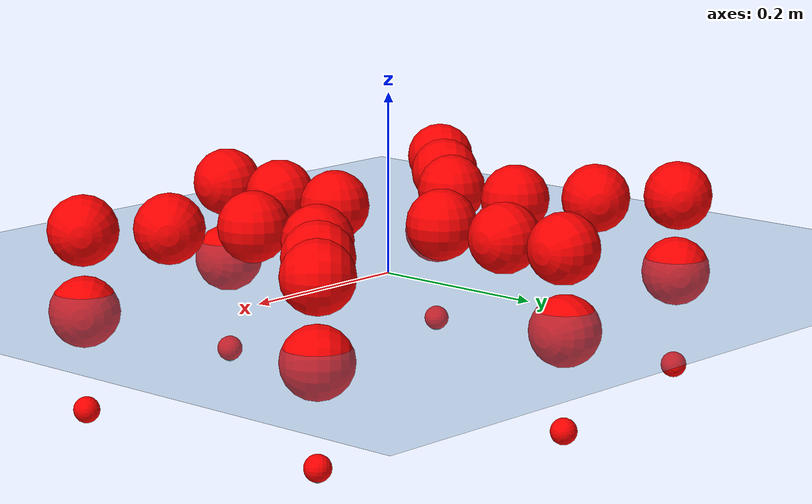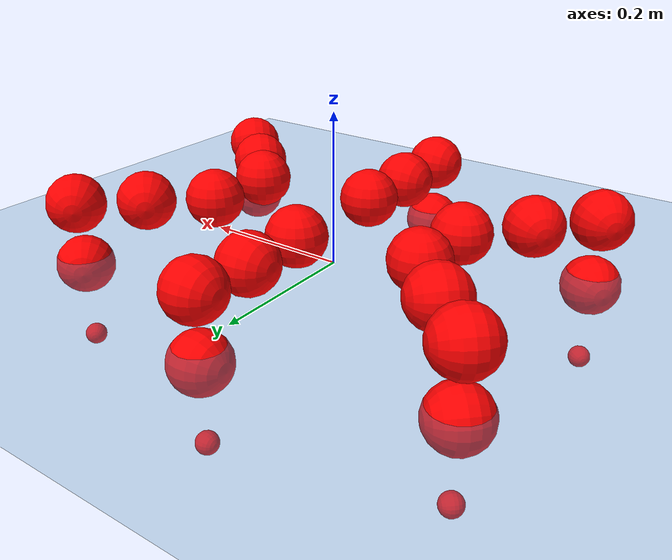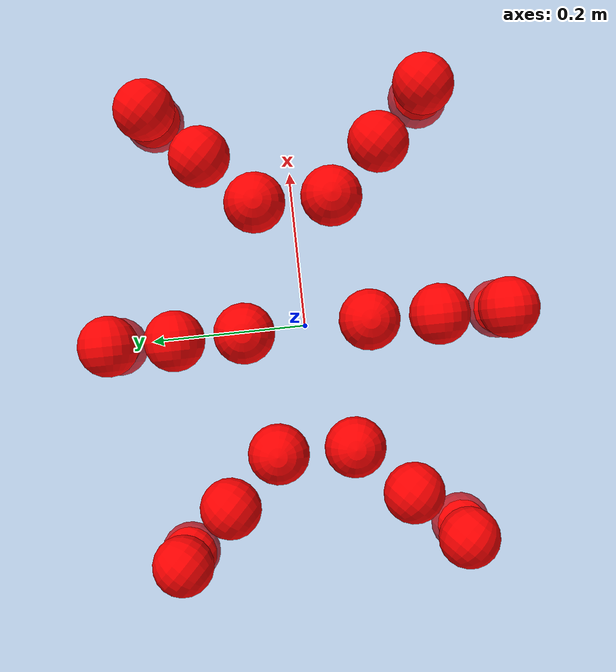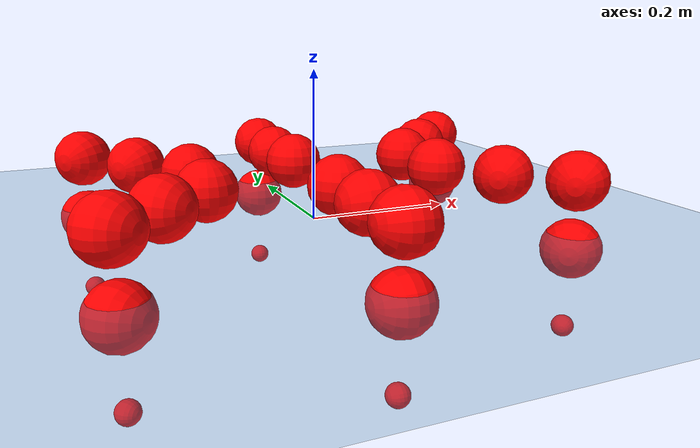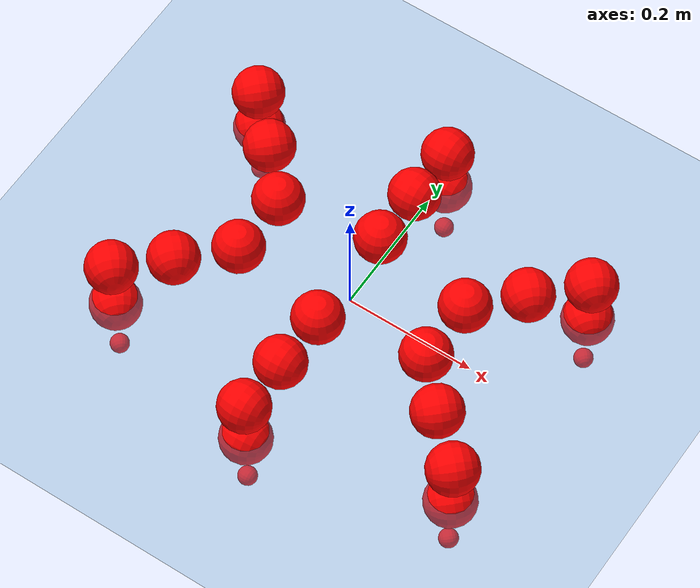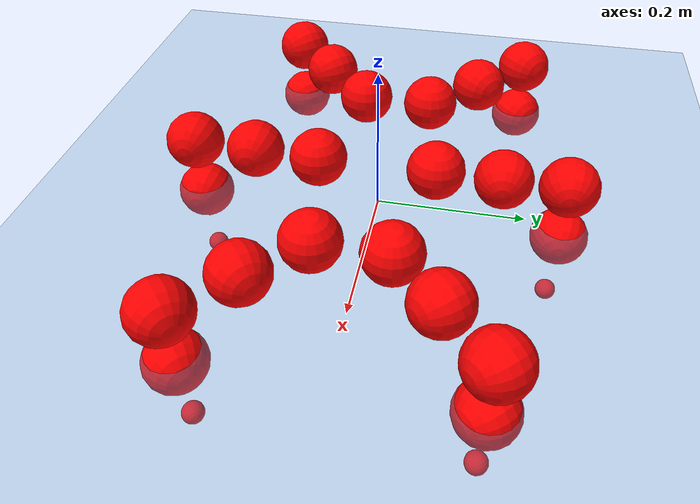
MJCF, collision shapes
<mujoco model="Golem">
  <compiler angle="radian" assetdir="assets" balanceinertia="true" inertiafromgeom="false"/>

  <option timestep="0.005" density="1.2" viscosity="2e-05"/>

  <size nkey="1"/>

  <visual>
    <quality shadowsize="8192"/>
    <map shadowclip="0.5"/>
  </visual>

  <default>
    <default class="/">
      <joint armature="0.01" damping="0.01" frictionloss="0.01"/>
      <geom contype="0" conaffinity="0" group="1" solref="-1000 -80"/>
      <site size="0.01 0.005 0.005" group="5"/>
      <general forcelimited="true" biastype="affine" gainprm="25" biasprm="0 -25 -0.5"/>
      <default class="visual">
        <geom type="mesh" group="2"/>
      </default>
      <default class="collision">
        <geom group="3"/>
      </default>
      <default class="foot">
        <geom size="0.01 0 0" condim="6" group="4" priority="1" solimp="0.015 1 0.01"/>
      </default>
      <default class="reward_collision_sphere">
        <geom group="5" rgba="1 0 0 1"/>
      </default>
    </default>
  </default>

  <asset>
    <texture type="skybox" colorspace="auto" name="//unnamed_texture_0" builtin="gradient" rgb1="0.95 0.95 0.95" rgb2="0.95 0.95 0.95" width="100" height="600"/>
    <texture type="2d" colorspace="auto" name="texplane" builtin="checker" rgb1="0.345 0.575 0.748" rgb2="0.345 0.575 0.748" markrgb="1 1 1" width="512" height="512"/>
    <material name="MatPlane" class="/" texture="texplane" texuniform="true" texrepeat="2 2" specular="0.9"/>
    <mesh name="body" class="/" file="body.stl" scale="0.001 0.001 0.001"/>
    <mesh name="coxa" class="/" file="coxa.stl" scale="0.001 0.001 0.001"/>
    <mesh name="femur" class="/" file="femur.stl" scale="0.001 0.001 0.001"/>
    <mesh name="tibia" class="/" file="tibia.stl" scale="0.001 0.001 0.001"/>
    <mesh name="tarsus" class="/" file="tarsus.stl" scale="0.001 0.001 0.001"/>
  </asset>

  <worldbody>
    <geom name="floor" class="/" size="100 100 0.125" type="plane" group="0" material="MatPlane"/>
    <light name="toplight_shadow" class="/" pos="0 0 5" dir="0.0990148 0.0990148 -0.990148" type="directional" ambient="0.04 0.04 0.04" diffuse="0.55 0.55 0.55" specular="0.12 0.12 0.12"/>
    <light name="toplight_fill" class="/" pos="0 0 5" dir="0.0990148 0.0990148 -0.990148" type="directional" castshadow="false" ambient="0.04 0.04 0.04" diffuse="0.3 0.3 0.3" specular="0.08 0.08 0.08"/>
    <body name="trunk" pos="0.00014196 0.000118288 -0.00103998" quat="1 -0.000509656 9.87049e-05 -0.000102955">
      <inertial pos="0.0028361 0.000852681 -0.00424647" quat="0.999903 -0.00157057 0.0126372 -0.00565494" mass="3.36374" diaginertia="0.0108476 0.00368556 0.0147889"/>
      <joint name="//unnamed_joint_0" type="free"/>
      <geom name="//unnamed_geom_1" class="/" pos="0 0 0.0686636" quat="1 0 0 0" type="mesh" rgba="0.9 0.9 0.9 1" mesh="body"/>
      <site name="imu" class="/" pos="0.126591 -0.00126264 0.100359" size="0.00967833"/>
      <camera name="track" class="/" pos="0 -1.63797 0" quat="0.707107 0.707107 0 0" mode="trackcom"/>
      <camera name="ego_camera" class="/" pos="0.131514 0 0.107287" quat="-0.5 -0.5 0.5 0.5"/>
      <body name="coxa_RR" pos="-0.178585 -0.0682466 0.0663827" quat="0.38255 -1.67074e-06 -5.97994e-05 -0.923935">
        <inertial pos="-0.000505661 -0.002676 0.00048506" quat="0.999999 -0.000187935 0.000911749 -0.000936833" mass="0.176599" diaginertia="0.0102384 0.00343319 0.0141282"/>
        <joint name="coxa_joint_RR" class="/" pos="0 0 0" axis="-0.000444584 0.00101925 -0.999999" range="-3.19506 3.1446" armature="0.00985618" damping="0" frictionloss="0.00953185"/>
        <geom name="//unnamed_geom_2" class="/" type="mesh" rgba="0.2 0.2 0.2 1" mesh="coxa"/>
        <geom name="//unnamed_geom_3" class="reward_collision_sphere" size="0.0387133" pos="-0.0303493 0 0"/>
        <body name="femur_RR" pos="0.0622969 0.00219793 0.00231198" quat="0.500467 -0.499747 0.499071 0.500713">
          <inertial pos="0.00104383 2.4938e-05 -0.00279239" quat="0.999995 -0.000275902 0.00269182 0.00183856" mass="0.176079" diaginertia="0.0104991 0.00357383 0.0143403"/>
          <joint name="femur_joint_RR" class="/" pos="0 0 0" axis="0.000780043 0.00942642 -0.999955" range="-3.13581 3.17601" armature="0.0097423" damping="0" frictionloss="0.010905"/>
          <geom name="//unnamed_geom_4" class="/" type="mesh" rgba="0.9 0.9 0.9 1" mesh="femur"/>
          <geom name="//unnamed_geom_5" class="reward_collision_sphere" size="0.0387133"/>
          <body name="tibia_RR" pos="-0.00227915 -0.0879203 2.76593e-05" quat="0.000143788 1 8.01281e-05 8.9763e-05">
            <inertial pos="0.00104969 -0.000995556 -0.00102442" quat="0.999988 0.000863621 0.000267097 0.00473012" mass="0.181061" diaginertia="0.010973 0.00371244 0.0144854"/>
            <joint name="tibia_joint_RR" class="/" pos="0 0 0" axis="0.0113418 0.0103497 0.999882" range="-3.0837 3.11724" armature="0.0100088" damping="0.0206766" frictionloss="0.0086154"/>
            <geom name="//unnamed_geom_6" class="/" type="mesh" rgba="0.2 0.2 0.2 1" mesh="tibia"/>
            <geom name="//unnamed_geom_7" class="reward_collision_sphere" size="0.0387133"/>
            <body name="tarsus_RR" pos="0.0915449 -0.000677852 -0.00304684" quat="0.999999 -0.00113463 0.00044541 0.000630068">
              <inertial pos="0.0588481 0.00011693 -0.00281614" quat="0.495412 0.505787 0.502364 0.496364" mass="0.183611" diaginertia="0.0104122 0.00373659 0.0136872"/>
              <joint name="tarsus_joint_RR" class="/" pos="0 0 0" axis="-0.00262145 -0.00230763 0.999994" range="-3.19515 3.13805" armature="0.00887277" damping="0" frictionloss="0.0108625"/>
              <geom name="//unnamed_geom_8" class="/" type="mesh" rgba="0.9 0.9 0.9 1" mesh="tarsus"/>
              <geom name="foot_1" class="foot" size="0.0106785" pos="0.113304 0 0" quat="0 -0.707107 0 0.707107"/>
              <geom name="//unnamed_geom_10" class="reward_collision_sphere" size="0.0387133"/>
              <geom name="//unnamed_geom_11" class="reward_collision_sphere" size="0.0145175" pos="0.108752 0 0"/>
              <site name="foot_1" class="foot" pos="0.113304 0 0" quat="0 -0.707107 0 0.707107" size="0.00967833"/>
            </body>
          </body>
        </body>
      </body>
      <body name="coxa_RM" pos="-8.43796e-05 -0.111319 0.0661113" quat="0.707103 -1.96128e-06 -6.48515e-07 -0.70711">
        <inertial pos="0.0028827 -0.000331221 -0.00186659" quat="1 8.7542e-05 -1.29927e-05 -0.000239001" mass="0.178596" diaginertia="0.0104832 0.00379725 0.0144271"/>
        <joint name="coxa_joint_RM" class="/" pos="0 0 0" axis="9.02877e-05 -0.000706422 -1" range="-3.15966 3.13215" armature="0.011033" damping="0.00218182" frictionloss="0.0107039"/>
        <geom name="//unnamed_geom_12" class="/" type="mesh" rgba="0.2 0.2 0.2 1" mesh="coxa"/>
        <geom name="//unnamed_geom_13" class="reward_collision_sphere" size="0.0387133" pos="-0.0303493 0 0"/>
        <body name="femur_RM" pos="0.0576142 -0.0022067 0.000599757" quat="0.499748 -0.500041 0.500167 0.500044">
          <inertial pos="0.00107206 -0.00304224 3.29817e-05" quat="0.999953 0.00833831 0.0045575 -0.00184679" mass="0.177419" diaginertia="0.0101645 0.00363407 0.0137369"/>
          <joint name="femur_joint_RM" class="/" pos="0 0 0" axis="0.0118178 -0.00549322 -0.999915" stiffness="0.0088576" range="-3.14982 3.1087" armature="0.0102467" damping="0.0261184" frictionloss="0.00832541"/>
          <geom name="//unnamed_geom_14" class="/" type="mesh" rgba="0.9 0.9 0.9 1" mesh="femur"/>
          <geom name="//unnamed_geom_15" class="reward_collision_sphere" size="0.0387133"/>
          <body name="tibia_RM" pos="-0.00195269 -0.0862517 -0.000772244" quat="-0.000821171 0.999999 -0.00064281 -0.000999062">
            <inertial pos="-0.00285119 0.000340138 -0.00102977" quat="0.999899 0.00606583 -0.00606575 0.011297" mass="0.175712" diaginertia="0.0102272 0.00357012 0.013885"/>
            <joint name="tibia_joint_RM" class="/" pos="0 0 0" axis="-0.00031251 0.00138813 0.999999" range="-3.15741 3.19566" armature="0.00890298" damping="0.0104328" frictionloss="0.00972453"/>
            <geom name="//unnamed_geom_16" class="/" type="mesh" rgba="0.2 0.2 0.2 1" mesh="tibia"/>
            <geom name="//unnamed_geom_17" class="reward_collision_sphere" size="0.0387133"/>
            <body name="tarsus_RM" pos="0.0886264 -0.000930896 0.00011728" quat="1 8.01441e-05 0.000293261 -0.000193039">
              <inertial pos="0.0627195 0.00164288 0.00189446" quat="0.499927 0.496425 0.50124 0.502388" mass="0.181183" diaginertia="0.0105882 0.00363001 0.0141803"/>
              <joint name="tarsus_joint_RM" class="/" pos="0 0 0" axis="-0.00175227 0.00591956 0.999981" range="-3.18994 3.09345" armature="0.00956393" damping="0.0045907" frictionloss="0.00846021"/>
              <geom name="//unnamed_geom_18" class="/" type="mesh" rgba="0.9 0.9 0.9 1" mesh="tarsus"/>
              <geom name="foot_2" class="foot" size="0.0107567" pos="0.113304 0 0" quat="0 -0.707107 0 0.707107"/>
              <geom name="//unnamed_geom_20" class="reward_collision_sphere" size="0.0387133"/>
              <geom name="//unnamed_geom_21" class="reward_collision_sphere" size="0.0145175" pos="0.108752 0 0"/>
              <site name="foot_2" class="foot" pos="0.113304 0 0" quat="0 -0.707107 0 0.707107" size="0.00967833"/>
            </body>
          </body>
        </body>
      </body>
      <body name="coxa_RF" pos="0.179829 -0.0710238 0.0705985" quat="0.923853 -0.00124662 -2.06588e-05 -0.382747">
        <inertial pos="-0.000653977 -0.00146842 0.0025853" quat="0.999971 0.00197771 0.00206748 -0.00706377" mass="0.17002" diaginertia="0.00995326 0.00355442 0.0137431"/>
        <joint name="coxa_joint_RF" class="/" pos="0 0 0" axis="-0.00369673 0.0079143 -0.999962" range="-3.11495 3.19316" armature="0.00856781" damping="0" frictionloss="0.00998619"/>
        <geom name="//unnamed_geom_22" class="/" type="mesh" rgba="0.2 0.2 0.2 1" mesh="coxa"/>
        <geom name="//unnamed_geom_23" class="reward_collision_sphere" size="0.0387133" pos="-0.0303493 0 0"/>
        <body name="femur_RF" pos="0.0589685 -0.00292392 -0.00218663" quat="0.500218 -0.500114 0.499705 0.499962">
          <inertial pos="-0.00263593 0.00137351 -0.00095338" quat="0.999973 0.00468907 0.00546656 -0.00162232" mass="0.179646" diaginertia="0.0103579 0.0037233 0.0140627"/>
          <joint name="femur_joint_RF" class="/" pos="0 0 0" axis="0.00307862 0.000165489 -0.999995" stiffness="0.00716298" range="-3.11997 3.0849" armature="0.00993371" damping="0" frictionloss="0.00838383"/>
          <geom name="//unnamed_geom_24" class="/" type="mesh" rgba="0.9 0.9 0.9 1" mesh="femur"/>
          <geom name="//unnamed_geom_25" class="reward_collision_sphere" size="0.0387133"/>
          <body name="tibia_RF" pos="0.000873663 -0.0914934 0.002115" quat="5.36484e-05 1 2.20498e-05 2.78046e-05">
            <inertial pos="0.00043768 7.71165e-05 -0.000642461" quat="0.99995 -0.00943773 0.00111688 -0.00311057" mass="0.175691" diaginertia="0.0102506 0.00353834 0.0143548"/>
            <joint name="tibia_joint_RF" class="/" pos="0 0 0" axis="0.00585925 -0.005586 0.999967" range="-3.12486 3.19396" armature="0.00957415" damping="0.000410598" frictionloss="0.0110424"/>
            <geom name="//unnamed_geom_26" class="/" type="mesh" rgba="0.2 0.2 0.2 1" mesh="tibia"/>
            <geom name="//unnamed_geom_27" class="reward_collision_sphere" size="0.0387133"/>
            <body name="tarsus_RF" pos="0.0889593 0.000155395 0.00112085" quat="0.999999 -0.00109354 0.000618081 -0.000146937">
              <inertial pos="0.0585579 0.000580867 0.00134137" quat="0.500127 0.497124 0.500551 0.502184" mass="0.186708" diaginertia="0.0107573 0.00373318 0.0145653"/>
              <joint name="tarsus_joint_RF" class="/" pos="0 0 0" axis="-0.000854216 -0.0142777 0.999898" stiffness="0.0256083" range="-3.09158 3.14471" armature="0.00983785" damping="0.00659629" frictionloss="0.009763"/>
              <geom name="//unnamed_geom_28" class="/" type="mesh" rgba="0.9 0.9 0.9 1" mesh="tarsus"/>
              <geom name="foot_3" class="foot" size="0.00937256" pos="0.113304 0 0" quat="0 -0.707107 0 0.707107"/>
              <geom name="//unnamed_geom_30" class="reward_collision_sphere" size="0.0387133"/>
              <geom name="//unnamed_geom_31" class="reward_collision_sphere" size="0.0145175" pos="0.108752 0 0"/>
              <site name="foot_3" class="foot" pos="0.113304 0 0" quat="0 -0.707107 0 0.707107" size="0.00967833"/>
            </body>
          </body>
        </body>
      </body>
      <body name="coxa_LR" pos="-0.177212 0.0708263 0.0675846" quat="0.383197 0.000172384 -0.000102982 0.923666">
        <inertial pos="-0.00255481 -0.00266268 0.00089088" quat="0.999918 0.0025836 -0.00745577 0.0100464" mass="0.175277" diaginertia="0.010295 0.00344391 0.0136553"/>
        <joint name="coxa_joint_LR" class="/" pos="0 0 0" axis="0.00129162 -0.0023698 -0.999996" stiffness="0.0128301" range="-3.19534 3.19122" armature="0.010847" damping="0" frictionloss="0.00918022"/>
        <geom name="//unnamed_geom_32" class="/" type="mesh" rgba="0.2 0.2 0.2 1" mesh="coxa"/>
        <geom name="//unnamed_geom_33" class="reward_collision_sphere" size="0.0387133" pos="-0.0303493 0 0"/>
        <body name="femur_LR" pos="0.0599042 -0.0038914 0.00125323" quat="0.500493 -0.500074 0.50017 0.499263">
          <inertial pos="-0.000764917 -0.000127255 -0.000342298" quat="1 -0.000128422 -6.11154e-05 -0.00013801" mass="0.182719" diaginertia="0.0104833 0.00382251 0.0141288"/>
          <joint name="femur_joint_LR" class="/" pos="0 0 0" axis="-0.00374471 -0.00159245 0.999992" range="-3.10523 3.12838" armature="0.0100052" damping="0.0154985" frictionloss="0.0095917"/>
          <geom name="//unnamed_geom_34" class="/" type="mesh" rgba="0.9 0.9 0.9 1" mesh="femur"/>
          <geom name="//unnamed_geom_35" class="reward_collision_sphere" size="0.0387133"/>
          <body name="tibia_LR" pos="-0.00233529 -0.092293 -0.000787251" quat="-0.000498328 0.999999 0.000515223 0.00123685">
            <inertial pos="0.00290065 -0.00243567 -0.00219387" quat="0.99995 -0.00430961 0.0045821 -0.00773159" mass="0.181813" diaginertia="0.0103756 0.00358533 0.0143645"/>
            <joint name="tibia_joint_LR" class="/" pos="0 0 0" axis="-0.00663858 -0.011067 -0.999917" range="-3.0839 3.17159" armature="0.0105593" damping="0" frictionloss="0.00970191"/>
            <geom name="//unnamed_geom_36" class="/" type="mesh" rgba="0.2 0.2 0.2 1" mesh="tibia"/>
            <geom name="//unnamed_geom_37" class="reward_collision_sphere" size="0.0387133"/>
            <body name="tarsus_LR" pos="0.0866502 -0.000762425 -0.000157156" quat="0.999999 -0.000920286 -0.000926489 -0.000200793">
              <inertial pos="0.0589033 -0.000880889 -0.00161126" quat="0.493106 0.49515 0.506698 0.504905" mass="0.180084" diaginertia="0.0109508 0.00356938 0.0139443"/>
              <joint name="tarsus_joint_LR" class="/" pos="0 0 0" axis="0.00766731 0.00310119 -0.999966" range="-3.18971 3.08136" armature="0.0084097" damping="0.0010606" frictionloss="0.00830614"/>
              <geom name="//unnamed_geom_38" class="/" type="mesh" rgba="0.9 0.9 0.9 1" mesh="tarsus"/>
              <geom name="foot_4" class="foot" size="0.00982052" pos="0.113304 0 0" quat="0.707107 0 -0.707107 0"/>
              <geom name="//unnamed_geom_40" class="reward_collision_sphere" size="0.0387133"/>
              <geom name="//unnamed_geom_41" class="reward_collision_sphere" size="0.0145175" pos="0.108752 0 0"/>
              <site name="foot_4" class="foot" pos="0.113304 0 0" quat="0.707107 0 -0.707107 0" size="0.00967833"/>
            </body>
          </body>
        </body>
      </body>
      <body name="coxa_LM" pos="-0.00119036 0.107066 0.0664551" quat="0.706959 0.000350733 0.000309913 0.707254">
        <inertial pos="-0.00141479 -0.00268202 0.00253422" quat="0.999953 0.000747291 -0.00963001 0.00115461" mass="0.177627" diaginertia="0.0109198 0.0037326 0.0144227"/>
        <joint name="coxa_joint_LM" class="/" pos="0 0 0" axis="0.000817176 0.00160091 -0.999998" range="-3.15506 3.15553" armature="0.0104673" damping="0.0100037" frictionloss="0.0110522"/>
        <geom name="//unnamed_geom_42" class="/" type="mesh" rgba="0.2 0.2 0.2 1" mesh="coxa"/>
        <geom name="//unnamed_geom_43" class="reward_collision_sphere" size="0.0387133" pos="-0.0303493 0 0"/>
        <body name="femur_LM" pos="0.0575758 0.000347405 -0.00198101" quat="0.500108 -0.500206 0.500092 0.499593">
          <inertial pos="0.00270079 -8.58754e-05 -0.00126775" quat="0.999918 -0.00170285 0.0118999 0.00446814" mass="0.19283" diaginertia="0.0107057 0.00385008 0.0143633"/>
          <joint name="femur_joint_LM" class="/" pos="0 0 0" axis="-0.00100322 -0.00037393 0.999999" range="-3.11106 3.11991" armature="0.00985348" damping="0.0163767" frictionloss="0.00834854"/>
          <geom name="//unnamed_geom_44" class="/" type="mesh" rgba="0.9 0.9 0.9 1" mesh="femur"/>
          <geom name="//unnamed_geom_45" class="reward_collision_sphere" size="0.0387133"/>
          <body name="tibia_LM" pos="-0.00107796 -0.0827681 -0.00191165" quat="0.000917703 0.999999 -0.000500146 0.000239523">
            <inertial pos="0.00289838 -0.00108128 -0.00208653" quat="0.999962 0.00429735 -0.00242042 -0.00715613" mass="0.184187" diaginertia="0.0107518 0.00372969 0.0140269"/>
            <joint name="tibia_joint_LM" class="/" pos="0 0 0" axis="0.0128493 0.00824151 -0.999883" range="-3.14676 3.13675" armature="0.00943505" damping="0.00669036" frictionloss="0.00853367"/>
            <geom name="//unnamed_geom_46" class="/" type="mesh" rgba="0.2 0.2 0.2 1" mesh="tibia"/>
            <geom name="//unnamed_geom_47" class="reward_collision_sphere" size="0.0387133"/>
            <body name="tarsus_LM" pos="0.0880145 0.00143251 -0.0017568" quat="1 0.000489593 0.000413572 -0.000656256">
              <inertial pos="0.0607978 5.84067e-05 0.0028347" quat="0.501194 0.493834 0.505504 0.499397" mass="0.187632" diaginertia="0.0107644 0.0036194 0.014383"/>
              <joint name="tarsus_joint_LM" class="/" pos="0 0 0" axis="-0.00226572 -0.00140204 -0.999996" stiffness="0.00322678" range="-3.15638 3.15736" armature="0.0101012" damping="0" frictionloss="0.0105378"/>
              <geom name="//unnamed_geom_48" class="/" type="mesh" rgba="0.9 0.9 0.9 1" mesh="tarsus"/>
              <geom name="foot_5" class="foot" size="0.0100157" pos="0.113304 0 0" quat="0.707107 0 -0.707107 0"/>
              <geom name="//unnamed_geom_50" class="reward_collision_sphere" size="0.0387133"/>
              <geom name="//unnamed_geom_51" class="reward_collision_sphere" size="0.0145175" pos="0.108752 0 0"/>
              <site name="foot_5" class="foot" pos="0.113304 0 0" quat="0.707107 0 -0.707107 0" size="0.00967833"/>
            </body>
          </body>
        </body>
      </body>
      <body name="coxa_LF" pos="0.181376 0.0682613 0.0696367" quat="0.923886 -3.25924e-05 0.000257798 0.382667">
        <inertial pos="0.000911253 0.000312996 0.00213213" quat="0.999915 0.00467545 -0.00387279 -0.0115174" mass="0.17699" diaginertia="0.0104964 0.0038026 0.0138804"/>
        <joint name="coxa_joint_LF" class="/" pos="0 0 0" axis="-0.0129856 -0.0024543 -0.999913" range="-3.1371 3.12938" armature="0.00844485" damping="0.000266557" frictionloss="0.00980696"/>
        <geom name="//unnamed_geom_52" class="/" type="mesh" rgba="0.2 0.2 0.2 1" mesh="coxa"/>
        <geom name="//unnamed_geom_53" class="reward_collision_sphere" size="0.0387133" pos="-0.0303493 0 0"/>
        <body name="femur_LF" pos="0.0587936 -0.000840633 0.00173651" quat="0.499954 -0.500016 0.499992 0.500037">
          <inertial pos="-0.000530087 -0.000114336 0.000167876" quat="0.999987 -0.00376631 -0.00324508 0.000954293" mass="0.173188" diaginertia="0.0106773 0.00361044 0.0141262"/>
          <joint name="femur_joint_LF" class="/" pos="0 0 0" axis="0.00207606 0.00115239 0.999997" range="-3.15836 3.15905" armature="0.0110591" damping="0.0161916" frictionloss="0.010127"/>
          <geom name="//unnamed_geom_54" class="/" type="mesh" rgba="0.9 0.9 0.9 1" mesh="femur"/>
          <geom name="//unnamed_geom_55" class="reward_collision_sphere" size="0.0387133"/>
          <body name="tibia_LF" pos="-0.000697432 -0.0897348 -0.00197866" quat="-0.000635386 0.999999 -0.00110342 -0.000564617">
            <inertial pos="-0.00236345 -0.000332175 0.00130892" quat="1 3.91021e-05 0.000555901 -0.000588711" mass="0.186258" diaginertia="0.0104679 0.00365671 0.0145299"/>
            <joint name="tibia_joint_LF" class="/" pos="0 0 0" axis="0.00457188 -0.00170092 -0.999988" range="-3.13406 3.12633" armature="0.0111436" damping="0" frictionloss="0.00940802"/>
            <geom name="//unnamed_geom_56" class="/" type="mesh" rgba="0.2 0.2 0.2 1" mesh="tibia"/>
            <geom name="//unnamed_geom_57" class="reward_collision_sphere" size="0.0387133"/>
            <body name="tarsus_LF" pos="0.0869293 -0.00130337 0.000718654" quat="1 -5.40437e-06 1.20006e-06 6.27108e-06">
              <inertial pos="0.0611518 0.00322613 9.07309e-05" quat="0.497015 0.492269 0.499144 0.511374" mass="0.17447" diaginertia="0.0108214 0.00355215 0.014563"/>
              <joint name="tarsus_joint_LF" class="/" pos="0 0 0" axis="0.0135574 -0.0024956 -0.999905" range="-3.12934 3.13471" armature="0.0109876" damping="0.00818498" frictionloss="0.00930651"/>
              <geom name="//unnamed_geom_58" class="/" type="mesh" rgba="0.9 0.9 0.9 1" mesh="tarsus"/>
              <geom name="foot_6" class="foot" size="0.0104333" pos="0.113304 0 0" quat="0.707107 0 -0.707107 0"/>
              <geom name="//unnamed_geom_60" class="reward_collision_sphere" size="0.0387133"/>
              <geom name="//unnamed_geom_61" class="reward_collision_sphere" size="0.0145175" pos="0.108752 0 0"/>
              <site name="foot_6" class="foot" pos="0.113304 0 0" quat="0.707107 0 -0.707107 0" size="0.00967833"/>
            </body>
          </body>
        </body>
      </body>
    </body>
  </worldbody>

  <contact>
    <pair class="/" geom1="floor" geom2="foot_1" name="//unnamed_contact_0"/>
    <pair class="/" geom1="floor" geom2="foot_2" name="//unnamed_contact_1"/>
    <pair class="/" geom1="floor" geom2="foot_3" name="//unnamed_contact_2"/>
    <pair class="/" geom1="floor" geom2="foot_4" name="//unnamed_contact_3"/>
    <pair class="/" geom1="floor" geom2="foot_5" name="//unnamed_contact_4"/>
    <pair class="/" geom1="floor" geom2="foot_6" name="//unnamed_contact_5"/>
  </contact>

  <actuator>
    <general name="coxa_joint_RR" class="/" joint="coxa_joint_RR" forcerange="-6.5281 6.5281" gainprm="24.6786" biasprm="0 -24.6786 -0.47284"/>
    <general name="femur_joint_RR" class="/" joint="femur_joint_RR" forcerange="-7.30425 7.30425" gainprm="24.6786" biasprm="0 -24.6786 -0.47284"/>
    <general name="tibia_joint_RR" class="/" joint="tibia_joint_RR" forcerange="-6.67714 6.67714" gainprm="24.6786" biasprm="0 -24.6786 -0.47284"/>
    <general name="tarsus_joint_RR" class="/" joint="tarsus_joint_RR" forcerange="-7.57273 7.57273" gainprm="24.6786" biasprm="0 -24.6786 -0.47284"/>
    <general name="coxa_joint_RM" class="/" joint="coxa_joint_RM" forcerange="-6.84493 6.84493" gainprm="24.6786" biasprm="0 -24.6786 -0.47284"/>
    <general name="femur_joint_RM" class="/" joint="femur_joint_RM" forcerange="-7.03243 7.03243" gainprm="24.6786" biasprm="0 -24.6786 -0.47284"/>
    <general name="tibia_joint_RM" class="/" joint="tibia_joint_RM" forcerange="-7.17012 7.17012" gainprm="24.6786" biasprm="0 -24.6786 -0.47284"/>
    <general name="tarsus_joint_RM" class="/" joint="tarsus_joint_RM" forcerange="-7.33938 7.33938" gainprm="24.6786" biasprm="0 -24.6786 -0.47284"/>
    <general name="coxa_joint_RF" class="/" joint="coxa_joint_RF" forcerange="-7.80549 7.80549" gainprm="24.6786" biasprm="0 -24.6786 -0.47284"/>
    <general name="femur_joint_RF" class="/" joint="femur_joint_RF" forcerange="-6.70567 6.70567" gainprm="24.6786" biasprm="0 -24.6786 -0.47284"/>
    <general name="tibia_joint_RF" class="/" joint="tibia_joint_RF" forcerange="-7.81205 7.81205" gainprm="24.6786" biasprm="0 -24.6786 -0.47284"/>
    <general name="tarsus_joint_RF" class="/" joint="tarsus_joint_RF" forcerange="-6.33892 6.33892" gainprm="24.6786" biasprm="0 -24.6786 -0.47284"/>
    <general name="coxa_joint_LR" class="/" joint="coxa_joint_LR" forcerange="-6.31466 6.31466" gainprm="24.6786" biasprm="0 -24.6786 -0.47284"/>
    <general name="femur_joint_LR" class="/" joint="femur_joint_LR" forcerange="-6.84482 6.84482" gainprm="24.6786" biasprm="0 -24.6786 -0.47284"/>
    <general name="tibia_joint_LR" class="/" joint="tibia_joint_LR" forcerange="-7.00169 7.00169" gainprm="24.6786" biasprm="0 -24.6786 -0.47284"/>
    <general name="tarsus_joint_LR" class="/" joint="tarsus_joint_LR" forcerange="-6.3154 6.3154" gainprm="24.6786" biasprm="0 -24.6786 -0.47284"/>
    <general name="coxa_joint_LM" class="/" joint="coxa_joint_LM" forcerange="-7.04668 7.04668" gainprm="24.6786" biasprm="0 -24.6786 -0.47284"/>
    <general name="femur_joint_LM" class="/" joint="femur_joint_LM" forcerange="-6.31902 6.31902" gainprm="24.6786" biasprm="0 -24.6786 -0.47284"/>
    <general name="tibia_joint_LM" class="/" joint="tibia_joint_LM" forcerange="-6.4794 6.4794" gainprm="24.6786" biasprm="0 -24.6786 -0.47284"/>
    <general name="tarsus_joint_LM" class="/" joint="tarsus_joint_LM" forcerange="-6.95449 6.95449" gainprm="24.6786" biasprm="0 -24.6786 -0.47284"/>
    <general name="coxa_joint_LF" class="/" joint="coxa_joint_LF" forcerange="-6.53872 6.53872" gainprm="24.6786" biasprm="0 -24.6786 -0.47284"/>
    <general name="femur_joint_LF" class="/" joint="femur_joint_LF" forcerange="-6.31321 6.31321" gainprm="24.6786" biasprm="0 -24.6786 -0.47284"/>
    <general name="tibia_joint_LF" class="/" joint="tibia_joint_LF" forcerange="-7.81614 7.81614" gainprm="24.6786" biasprm="0 -24.6786 -0.47284"/>
    <general name="tarsus_joint_LF" class="/" joint="tarsus_joint_LF" forcerange="-6.52648 6.52648" gainprm="24.6786" biasprm="0 -24.6786 -0.47284"/>
  </actuator>

  <sensor>
    <gyro site="imu" name="imu_angular_velocity"/>
    <velocimeter site="imu" name="imu_linear_velocity"/>
    <framelinvel objtype="site" objname="foot_1" name="foot_1_global_linear_velocity"/>
    <framelinvel objtype="site" objname="foot_2" name="foot_2_global_linear_velocity"/>
    <framelinvel objtype="site" objname="foot_3" name="foot_3_global_linear_velocity"/>
    <framelinvel objtype="site" objname="foot_4" name="foot_4_global_linear_velocity"/>
    <framelinvel objtype="site" objname="foot_5" name="foot_5_global_linear_velocity"/>
    <framelinvel objtype="site" objname="foot_6" name="foot_6_global_linear_velocity"/>
  </sensor>

  <keyframe>
    <key name="home" qpos="0 0 0.1457 1 0 0 0 0 0 0 0 0 0 0 0 0 0 0 0 0 0 0 0 0 0 0 0 0 0 0 0"/>
  </keyframe>
</mujoco>
